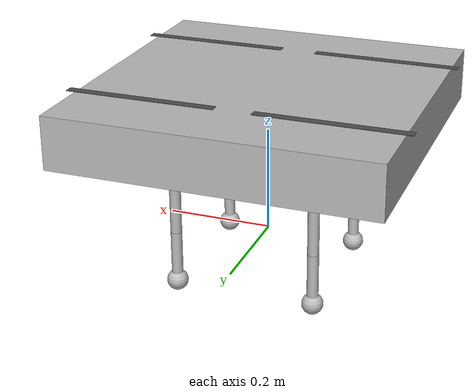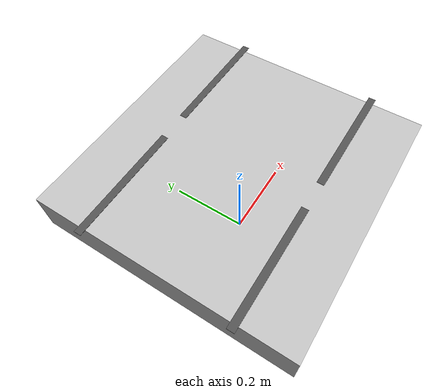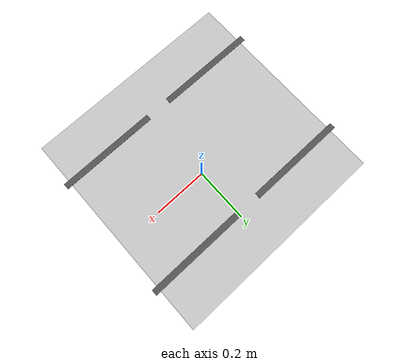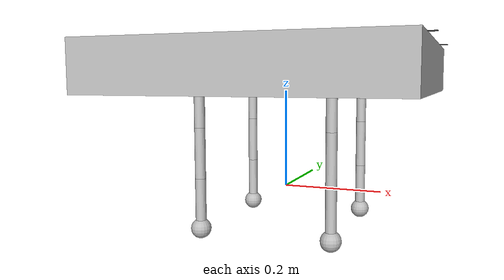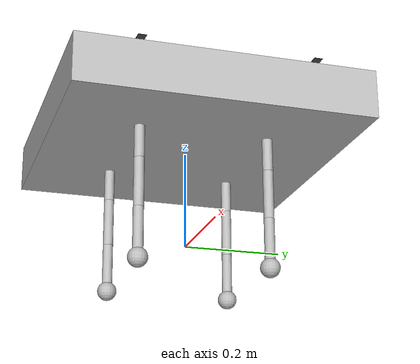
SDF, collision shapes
<?xml version="1.0" encoding="UTF-8"?>
<sdf version='1.9'>
  <model name='x500withArms'>
    <pose>0 0 .24 0 0 0</pose>
    <self_collide>false</self_collide>
    <static>false</static>
    <link name="base_link">
      <inertial>
        <mass>2.0</mass>
        <inertia>
          <ixx>0.02166666666666667</ixx>
          <ixy>0</ixy>
          <ixz>0</ixz>
          <iyy>0.02166666666666667</iyy>
          <iyz>0</iyz>
          <izz>0.04000000000000001</izz>
        </inertia>
      </inertial>
      <gravity>true</gravity>
      <velocity_decay/>
      <visual name="base_link_visual">
        <pose>-0.45 -0.285 -0.42 1.57079632679 0 1.57079632679</pose>
        <geometry>
          <mesh>
            <scale>1 1 1</scale>
            <uri>model://x500withArms/meshes/Holybro-X500-V2-no-landinggear-arm-attachments.dae</uri>
          </mesh>
        </geometry>
      </visual>
      <collision name="base_link_collision_0">
        <pose>0 0 .007 0 0 0</pose>
        <geometry>
          <box>
            <size>0.6 0.6 0.1</size>
          </box>
        </geometry>
        <surface>
          <contact>
            <ode>
              <min_depth>0.001</min_depth>
              <max_vel>0</max_vel>
            </ode>
          </contact>
          <friction>
            <ode/>
          </friction>
        </surface>
      </collision>
      <sensor name="air_pressure_sensor" type="air_pressure">
        <always_on>1</always_on>
        <update_rate>50</update_rate>
        <air_pressure>
          <pressure>
            <noise type="gaussian">
              <mean>0</mean>
              <stddev>0.01</stddev>
            </noise>
          </pressure>
        </air_pressure>
      </sensor>
      <sensor name="imu_sensor" type="imu">
        <always_on>1</always_on>
        <update_rate>250</update_rate>
      </sensor>
    </link>
    <!-- Dummy Arm 0 -->
    <include>
      <name>dummy_arm0</name>
      <uri>model://dummy_arm</uri>
      <pose>0.1325 0.1325 -0.06 3.1415926 0 -0.78539816339</pose>
    </include>
    <joint name="dummy_arm0_base_joint" type="fixed">
      <parent>base_link</parent>
      <child>dummy_arm0::base_link</child>
      <pose>0.1325 0.1325 -0.06 3.1415926 0 0</pose>
    </joint>
    <!-- Dummy Arm 1 -->
    <include>
      <name>dummy_arm1</name>
      <uri>model://dummy_arm</uri>
      <pose>0.1325 -0.1325 -0.06 3.1415926 0 3.92699081699</pose>
    </include>
    <joint name="dummy_arm1_base_joint" type="fixed">
      <parent>base_link</parent>
      <child>dummy_arm1::base_link</child>
      <pose>0.1325 -0.1325 -0.06 3.1415926 0 0</pose>
    </joint>
    <!-- Dummy Arm 2 -->
    <include>
      <name>dummy_arm2</name>
      <uri>model://dummy_arm</uri>
      <pose>-0.1325 -0.1325 -0.06 3.1415926 0 2.35619449019</pose>
    </include>
    <joint name="dummy_arm2_base_joint" type="fixed">
      <parent>base_link</parent>
      <child>dummy_arm2::base_link</child>
      <pose>-0.1325 -0.1325 -0.06 3.1415926 0 0</pose>
    </joint>
    <!-- Dummy Arm 3 -->
    <include>
      <name>dummy_arm3</name>
      <uri>model://dummy_arm</uri>
      <pose>-0.1325 0.1325 -0.06 3.1415926 0 0.78539816339</pose>
    </include>
    <joint name="dummy_arm3_base_joint" type="fixed">
      <parent>base_link</parent>
      <child>dummy_arm3::base_link</child>
      <pose>-0.1325 0.1325 -0.06 3.1415926 0 0</pose>
    </joint>
    <link name="rotor_0">
      <gravity>true</gravity>
      <self_collide>false</self_collide>
      <velocity_decay/>
      <pose>0.174 -0.174 0.06 0 0 0</pose>
      <inertial>
          <mass>0.016076923076923075</mass>
          <inertia>
            <ixx>3.8464910483993325e-07</ixx>
            <iyy>2.6115851691700804e-05</iyy>
            <izz>2.649858234714004e-05</izz>
          </inertia>
        </inertial>
      <visual name="rotor_0_visual">
        <pose>-0.022 -0.14638461538461536 -0.016 0 0 0</pose>
        <geometry>
          <mesh>
            <scale>0.8461538461538461 0.8461538461538461 0.8461538461538461</scale>
            <uri>model://x500/meshes/1345_prop_ccw.stl</uri>
          </mesh>
        </geometry>
        <material>
          <script>
            <name>Gazebo/DarkGrey</name>
            <uri>file://media/materials/scripts/gazebo.material</uri>
          </script>
        </material>
      </visual>
      <collision name="rotor_0_collision">
        <pose>0 0 0 0 0 0 </pose>
        <geometry>
          <box>
            <size>0.2792307692307692 0.016923076923076923 0.0008461538461538462</size>
          </box>
        </geometry>
        <surface>
          <contact>
            <ode>
              <min_depth>0.001</min_depth>
              <max_vel>0</max_vel>
            </ode>
          </contact>
          <friction>
            <ode/>
          </friction>
        </surface>
      </collision>
    </link>
    <joint name="rotor_0_joint" type="revolute">
      <parent>base_link</parent>
      <child>rotor_0</child>
      <axis>
        <xyz>0 0 1</xyz>
        <limit>
          <lower>-1e+16</lower>
          <upper>1e+16</upper>
        </limit>
        <dynamics>
          <spring_reference>0</spring_reference>
          <spring_stiffness>0</spring_stiffness>
        </dynamics>
      </axis>
    </joint>
    <link name="rotor_1">
      <gravity>true</gravity>
      <self_collide>false</self_collide>
      <velocity_decay/>
      <pose>-0.174 0.174 0.06 0 0 0</pose>
      <inertial>
          <mass>0.016076923076923075</mass>
          <inertia>
            <ixx>3.8464910483993325e-07</ixx>
            <iyy>2.6115851691700804e-05</iyy>
            <izz>2.649858234714004e-05</izz>
          </inertia>
        </inertial>
      <visual name="rotor_1_visual">
        <pose>-0.022 -0.14638461538461536 -0.016 0 0 0</pose>
        <geometry>
          <mesh>
            <scale>0.8461538461538461 0.8461538461538461 0.8461538461538461</scale>
            <uri>model://x500/meshes/1345_prop_ccw.stl</uri>
          </mesh>
        </geometry>
        <material>
          <script>
            <name>Gazebo/DarkGrey</name>
            <uri>file://media/materials/scripts/gazebo.material</uri>
          </script>
        </material>
      </visual>
      <collision name="rotor_1_collision">
        <pose>0 0 0 0 0 0 </pose>
        <geometry>
          <box>
            <size>0.2792307692307692 0.016923076923076923 0.0008461538461538462</size>
          </box>
        </geometry>
        <surface>
          <contact>
            <ode>
              <min_depth>0.001</min_depth>
              <max_vel>0</max_vel>
            </ode>
          </contact>
          <friction>
            <ode/>
          </friction>
        </surface>
      </collision>
    </link>
    <joint name="rotor_1_joint" type="revolute">
      <parent>base_link</parent>
      <child>rotor_1</child>
      <axis>
        <xyz>0 0 1</xyz>
        <limit>
          <lower>-1e+16</lower>
          <upper>1e+16</upper>
        </limit>
        <dynamics>
          <spring_reference>0</spring_reference>
          <spring_stiffness>0</spring_stiffness>
        </dynamics>
      </axis>
    </joint>
    <link name="rotor_2">
      <gravity>true</gravity>
      <self_collide>false</self_collide>
      <velocity_decay/>
      <pose>0.174 0.174 0.06 0 0 0</pose>
      <inertial>
          <mass>0.016076923076923075</mass>
          <inertia>
            <ixx>3.8464910483993325e-07</ixx>
            <iyy>2.6115851691700804e-05</iyy>
            <izz>2.649858234714004e-05</izz>
          </inertia>
        </inertial>
      <visual name="rotor_2_visual">
        <pose>-0.022 -0.14638461538461536 -0.016 0 0 0</pose>
        <geometry>
          <mesh>
            <scale>0.8461538461538461 0.8461538461538461 0.8461538461538461</scale>
            <uri>model://x500/meshes/1345_prop_cw.stl</uri>
          </mesh>
        </geometry>
        <material>
          <script>
            <name>Gazebo/DarkGrey</name>
            <uri>file://media/materials/scripts/gazebo.material</uri>
          </script>
        </material>
      </visual>
      <collision name="rotor_2_collision">
        <pose>0 0 0 0 0 0 </pose>
        <geometry>
          <box>
            <size>0.2792307692307692 0.016923076923076923 0.0008461538461538462</size>
          </box>
        </geometry>
        <surface>
          <contact>
            <ode>
              <min_depth>0.001</min_depth>
              <max_vel>0</max_vel>
            </ode>
          </contact>
          <friction>
            <ode/>
          </friction>
        </surface>
      </collision>
    </link>
    <joint name="rotor_2_joint" type="revolute">
      <parent>base_link</parent>
      <child>rotor_2</child>
      <axis>
        <xyz>0 0 1</xyz>
        <limit>
          <lower>-1e+16</lower>
          <upper>1e+16</upper>
        </limit>
        <dynamics>
          <spring_reference>0</spring_reference>
          <spring_stiffness>0</spring_stiffness>
        </dynamics>
      </axis>
    </joint>
    <link name="rotor_3">
      <gravity>true</gravity>
      <self_collide>false</self_collide>
      <velocity_decay/>
      <pose>-0.174 -0.174 0.06 0 0 0</pose>
      <inertial>
          <mass>0.016076923076923075</mass>
          <inertia>
            <ixx>3.8464910483993325e-07</ixx>
            <iyy>2.6115851691700804e-05</iyy>
            <izz>2.649858234714004e-05</izz>
          </inertia>
        </inertial>
      <visual name="rotor_3_visual">
        <pose>-0.022 -0.14638461538461536 -0.016 0 0 0</pose>
        <geometry>
          <mesh>
            <scale>0.8461538461538461 0.8461538461538461 0.8461538461538461</scale>
            <uri>model://x500/meshes/1345_prop_cw.stl</uri>
          </mesh>
        </geometry>
        <material>
          <script>
            <name>Gazebo/DarkGrey</name>
            <uri>file://media/materials/scripts/gazebo.material</uri>
          </script>
        </material>
      </visual>
      <collision name="rotor_3_collision">
        <pose>0 0 0 0 0 0 </pose>
        <geometry>
          <box>
            <size>0.2792307692307692 0.016923076923076923 0.0008461538461538462</size>
          </box>
        </geometry>
        <surface>
          <contact>
            <ode>
              <min_depth>0.001</min_depth>
              <max_vel>0</max_vel>
            </ode>
          </contact>
          <friction>
            <ode/>
          </friction>
        </surface>
      </collision>
    </link>
    <joint name="rotor_3_joint" type="revolute">
      <parent>base_link</parent>
      <child>rotor_3</child>
      <axis>
        <xyz>0 0 1</xyz>
        <limit>
          <lower>-1e+16</lower>
          <upper>1e+16</upper>
        </limit>
        <dynamics>
          <spring_reference>0</spring_reference>
          <spring_stiffness>0</spring_stiffness>
        </dynamics>
      </axis>
    </joint>
   <plugin filename="gz-sim-multicopter-motor-model-system" name="gz::sim::systems::MulticopterMotorModel">
      <jointName>rotor_0_joint</jointName>
      <linkName>rotor_0</linkName>
      <turningDirection>ccw</turningDirection>
      <timeConstantUp>0.0125</timeConstantUp>
      <timeConstantDown>0.025</timeConstantDown>
      <maxRotVelocity>1000.0</maxRotVelocity>
      <motorConstant>8.54858e-06</motorConstant>
      <momentConstant>0.016</momentConstant>
      <commandSubTopic>command/motor_speed</commandSubTopic>
      <motorNumber>0</motorNumber>
      <rotorDragCoefficient>8.06428e-05</rotorDragCoefficient>
      <rollingMomentCoefficient>1e-06</rollingMomentCoefficient>
      <rotorVelocitySlowdownSim>10</rotorVelocitySlowdownSim>
      <motorType>velocity</motorType>
    </plugin>
    <plugin filename="gz-sim-multicopter-motor-model-system" name="gz::sim::systems::MulticopterMotorModel">
      <jointName>rotor_1_joint</jointName>
      <linkName>rotor_1</linkName>
      <turningDirection>ccw</turningDirection>
      <timeConstantUp>0.0125</timeConstantUp>
      <timeConstantDown>0.025</timeConstantDown>
      <maxRotVelocity>1000.0</maxRotVelocity>
      <motorConstant>8.54858e-06</motorConstant>
      <momentConstant>0.016</momentConstant>
      <commandSubTopic>command/motor_speed</commandSubTopic>
      <motorNumber>1</motorNumber>
      <rotorDragCoefficient>8.06428e-05</rotorDragCoefficient>
      <rollingMomentCoefficient>1e-06</rollingMomentCoefficient>
      <rotorVelocitySlowdownSim>10</rotorVelocitySlowdownSim>
      <motorType>velocity</motorType>
    </plugin>
    <plugin filename="gz-sim-multicopter-motor-model-system" name="gz::sim::systems::MulticopterMotorModel">
      <jointName>rotor_2_joint</jointName>
      <linkName>rotor_2</linkName>
      <turningDirection>cw</turningDirection>
      <timeConstantUp>0.0125</timeConstantUp>
      <timeConstantDown>0.025</timeConstantDown>
      <maxRotVelocity>1000.0</maxRotVelocity>
      <motorConstant>8.54858e-06</motorConstant>
      <momentConstant>0.016</momentConstant>
      <commandSubTopic>command/motor_speed</commandSubTopic>
      <motorNumber>2</motorNumber>
      <rotorDragCoefficient>8.06428e-05</rotorDragCoefficient>
      <rollingMomentCoefficient>1e-06</rollingMomentCoefficient>
      <rotorVelocitySlowdownSim>10</rotorVelocitySlowdownSim>
      <motorType>velocity</motorType>
    </plugin>
    <plugin filename="gz-sim-multicopter-motor-model-system" name="gz::sim::systems::MulticopterMotorModel">
      <jointName>rotor_3_joint</jointName>
      <linkName>rotor_3</linkName>
      <turningDirection>cw</turningDirection>
      <timeConstantUp>0.0125</timeConstantUp>
      <timeConstantDown>0.025</timeConstantDown>
      <maxRotVelocity>1000.0</maxRotVelocity>
      <motorConstant>8.54858e-06</motorConstant>
      <momentConstant>0.016</momentConstant>
      <commandSubTopic>command/motor_speed</commandSubTopic>
      <motorNumber>3</motorNumber>
      <rotorDragCoefficient>8.06428e-05</rotorDragCoefficient>
      <rollingMomentCoefficient>1e-06</rollingMomentCoefficient>
      <rotorVelocitySlowdownSim>10</rotorVelocitySlowdownSim>
      <motorType>velocity</motorType>
    </plugin>
    <plugin filename="JointWrench" name="gz::sim::systems::JointWrench">
      <!-- Dumma Arm 0 -->
      <joint_name>dummy_arm0::base_joint</joint_name>
      <joint_name>dummy_arm0::link0_joint</joint_name>
      <joint_name>dummy_arm0::link1_joint</joint_name>
      <joint_name>dummy_arm0::link2_joint</joint_name>
      <!-- Dumma Arm 1 -->
      <joint_name>dummy_arm1::base_joint</joint_name>
      <joint_name>dummy_arm1::link0_joint</joint_name>
      <joint_name>dummy_arm1::link1_joint</joint_name>
      <joint_name>dummy_arm1::link2_joint</joint_name>
      <!-- Dumma Arm 2 -->
      <joint_name>dummy_arm2::base_joint</joint_name>
      <joint_name>dummy_arm2::link0_joint</joint_name>
      <joint_name>dummy_arm2::link1_joint</joint_name>
      <joint_name>dummy_arm2::link2_joint</joint_name>
      <!-- Dumma Arm 3 -->
      <joint_name>dummy_arm3::base_joint</joint_name>
      <joint_name>dummy_arm3::link0_joint</joint_name>
      <joint_name>dummy_arm3::link1_joint</joint_name>
      <joint_name>dummy_arm3::link2_joint</joint_name>
      <!-- Multiplier from commanded torque to enacted
           torque at each joint. -->
      <multiplier>1.0</multiplier>
    </plugin>
  </model>
</sdf>

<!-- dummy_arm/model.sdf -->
<sdf version='1.9'>
  <model name='dummy_arm' xmlns:xacro="http://www.ros.org/wiki/xacro">
	<link name="base_link">
		<inertial>
			<mass>0.000000001</mass>
			<inertia>
				<ixx>0.000000001</ixx>
				<iyy>0.000000001</iyy>
				<izz>0.000000001</izz>
			</inertia>
		</inertial>
		<pose> 0 0 0 0 0 0</pose>
	</link>
	<link name="base_link_intermediate">
		<inertial>
			<mass>0.000000001</mass>
			<inertia>
				<ixx>0.000000001</ixx>
				<iyy>0.000000001</iyy>
				<izz>0.000000001</izz>
			</inertia>
		</inertial>
		<pose> 0 0 0 0 0 0</pose>
	</link>
	<joint name="base_joint" type="revolute">
		<pose>0 0 -0.05 0 0 0</pose>
		<parent>base_link</parent>
		<child>base_link_intermediate</child>
		<axis>
			<xyz>0 0 1</xyz>
			<limit>
				<lower>-1.57079632679</lower>
				<upper>1.57079632679</upper>
			</limit>
			<dynamics>
				<spring_reference>0</spring_reference>
				<spring_stiffness>0.45</spring_stiffness>
			</dynamics>
		</axis>
	</joint>
	<link name="link0">
		<inertial>
			<mass>0.05</mass>
			<inertia>
				<ixx>0.000043045</ixx>
				<iyy>0.000043045</iyy>
				<izz>0.000002756</izz>
			</inertia>
		</inertial>
		<gravity>true</gravity>
      		<velocity_decay/>
		<visual name="link0_visual">
			<pose> 0 0 0 0 0 0</pose>
			<geometry>
				<cylinder>
					<radius>0.0105</radius>
					<length>0.1</length>
				</cylinder>
			</geometry>
		</visual>
		<collision name="link0_collision">
			<pose> 0 0 0 0 0 0</pose>
			<geometry>
				<cylinder>
					<radius>0.0105</radius>
					<length>0.1</length>
				</cylinder>
			</geometry>
			<surface>
				<contact>
					<ode>
						<min_depth>0.001</min_depth>
						<max_vel>0</max_vel>
					</ode>
				</contact>
				<friction>
					<ode/>
				</friction>
			</surface>
		</collision>
	</link>
	<joint name="link0_joint" type="revolute">
		<pose>0 0 -0.05 0 0 0</pose>
		<parent>base_link</parent>
		<child>link0</child>
		<axis>
			<xyz>1 0 0</xyz>
			<limit>
				<lower>-1.57079632679</lower>
				<upper>1.57079632679</upper>
			</limit>
			<dynamics>
				<spring_reference>0</spring_reference>
				<spring_stiffness>0.45</spring_stiffness>
			</dynamics>
		</axis>
	</joint>
	<link name="link1">
		<inertial>
			<mass>0.05</mass>
			<inertia>
				<ixx>0.000043045</ixx>
				<iyy>0.000043045</iyy>
				<izz>0.000002756</izz>
			</inertia>
		</inertial>
		<gravity>true</gravity>
      		<velocity_decay/>
		<visual name="link1_visual">
			<pose> 0 0 0.1 0 0 0</pose>
			<geometry>
				<cylinder>
					<radius>0.0105</radius>
					<length>0.1</length>
				</cylinder>
			</geometry>
		</visual>
		<collision name="link1_collision">
			<pose> 0 0 0.1 0 0 0</pose>
			<geometry>
				<cylinder>
					<radius>0.0105</radius>
					<length>0.1</length>
				</cylinder>
			</geometry>
			<surface>
				<contact>
					<ode>
						<min_depth>0.001</min_depth>
						<max_vel>0</max_vel>
					</ode>
				</contact>
				<friction>
					<ode/>
				</friction>
			</surface>
		</collision>
	</link>
	<joint name="link1_joint" type="revolute">
		<pose>0 0 0.05 0 0 0</pose>
		<parent>link0</parent>
		<child>link1</child>
		<axis>
			<xyz>1 0 0</xyz>
			<limit>
				<lower>-1.57079632679</lower>
				<upper>1.57079632679</upper>
			</limit>
			<dynamics>
				<spring_reference>0</spring_reference>
				<spring_stiffness>0.45</spring_stiffness>
			</dynamics>
		</axis>
	</joint>
	<link name="link2">
		<inertial>
			<mass>0.05</mass>
			<inertia>
				<ixx>0.000043045</ixx>
				<iyy>0.000043045</iyy>
				<izz>0.000002756</izz>
			</inertia>
		</inertial>
		<gravity>true</gravity>
      		<velocity_decay/>
		<visual name="link2_visual">
			<pose> 0 0 0.2 0 0 0</pose>
			<geometry>
				<cylinder>
					<radius>0.0105</radius>
					<length>0.1</length>
				</cylinder>
			</geometry>
		</visual>
		<collision name="link2_collision">
			<pose> 0 0 0.2 0 0 0</pose>
			<geometry>
				<cylinder>
					<radius>0.0105</radius>
					<length>0.1</length>
				</cylinder>
			</geometry>
			<surface>
				<contact>
					<ode>
						<min_depth>0.001</min_depth>
						<max_vel>0</max_vel>
					</ode>
				</contact>
				<friction>
					<ode/>
				</friction>
			</surface>
		</collision>
	</link>
	<joint name="link2_joint" type="revolute">
		<pose>0 0 0.15 0 0 0</pose>
		<parent>link1</parent>
		<child>link2</child>
		<axis>
			<xyz>1 0 0</xyz>
			<limit>
				<lower>-1.57079632679</lower>
				<upper>1.57079632679</upper>
			</limit>
			<dynamics>
				<spring_reference>0</spring_reference>
				<spring_stiffness>0.45</spring_stiffness>
			</dynamics>
		</axis>
	</joint>
	<link name="ee">
		<inertial>
			<mass>0.01</mass>
			<inertia>
				<ixx>0.0000006667</ixx>
				<iyy>0.0000006667</iyy>
				<izz>0.0000006667</izz>
			</inertia>
		</inertial>
		<gravity>true</gravity>
      		<velocity_decay/>
		<visual name="ee_visual">
			<pose> 0 0 0.25 0 0 0</pose>
			<geometry>
				<sphere>
					<radius>0.02</radius>
				</sphere>
			</geometry>
		</visual>
		<collision name="ee_collision">
			<pose> 0 0 0.25 0 0 0</pose>
			<geometry>
				<sphere>
					<radius>0.02</radius>
				</sphere>
			</geometry>
			<surface>
				<contact>
					<ode>
						<min_depth>0.001</min_depth>
						<max_vel>0</max_vel>
					</ode>
				</contact>
				<friction>
					<ode/>
				</friction>
			</surface>
		</collision>

		<sensor name='contact_sensor' type='contact'>
			<contact>
				<collision>ee_collision</collision>
			</contact>
		</sensor>
	</link>
	<joint name="ee_joint" type="fixed">
		<pose>0 0 0.25 0 0 0</pose>
		<parent>link2</parent>
		<child>ee</child>
	</joint>

	 <!-- Joint states plugin -->
	<plugin filename="gz-sim-joint-state-publisher-system" name="gz::sim::systems::JointStatePublisher"/>
	<!-- Pre-Made Contact Sensor-->
	<!-- Custom Contact Sensor -->
	<plugin filename="PressureSensor" name="gz::sim::systems::PressureSensor"/>
  </model>
</sdf>
